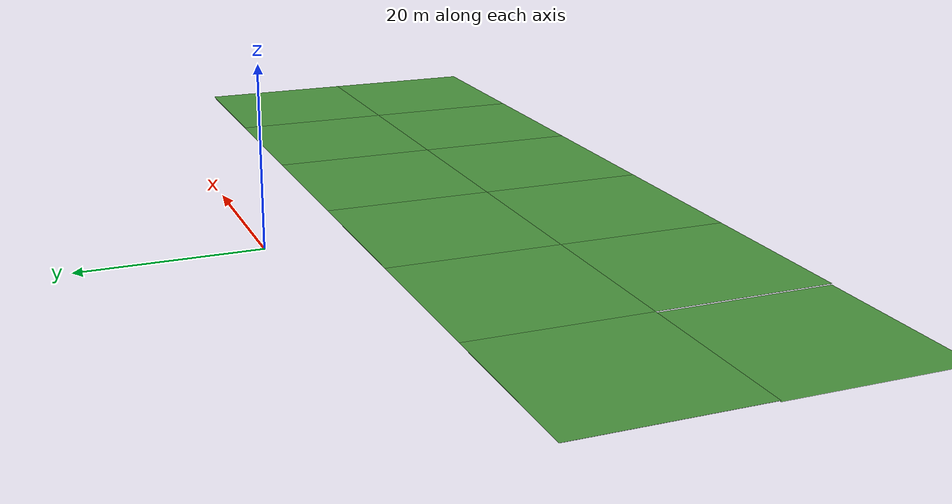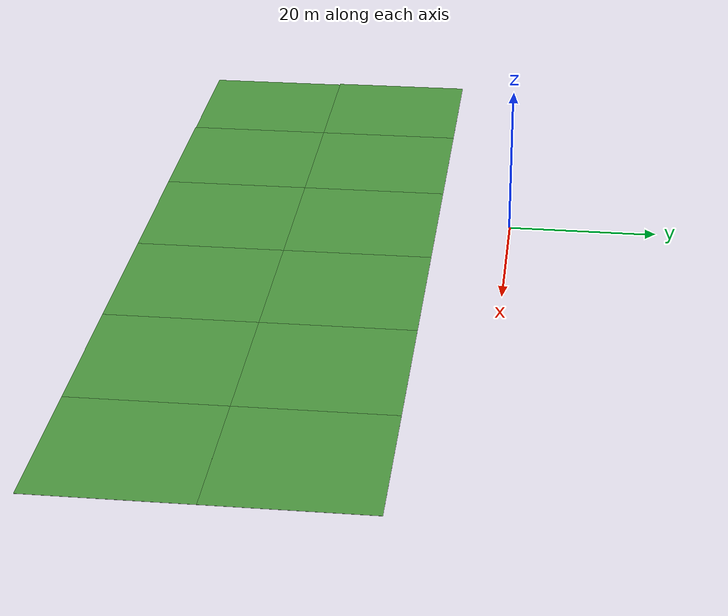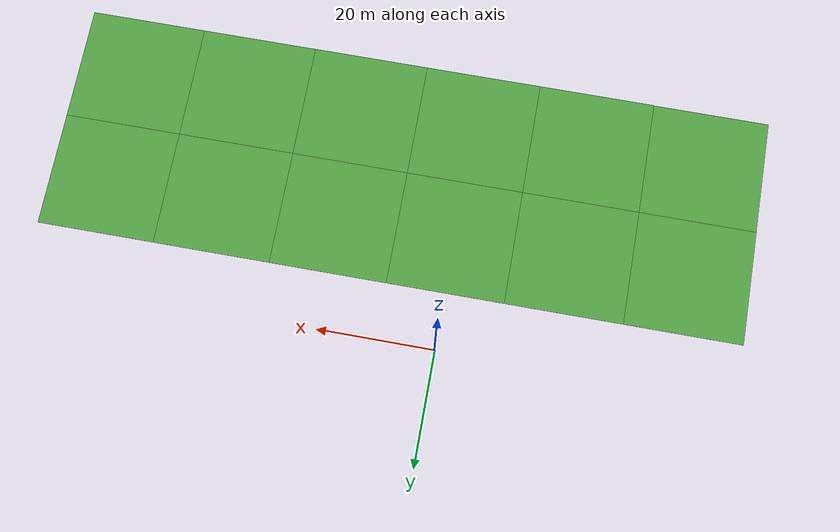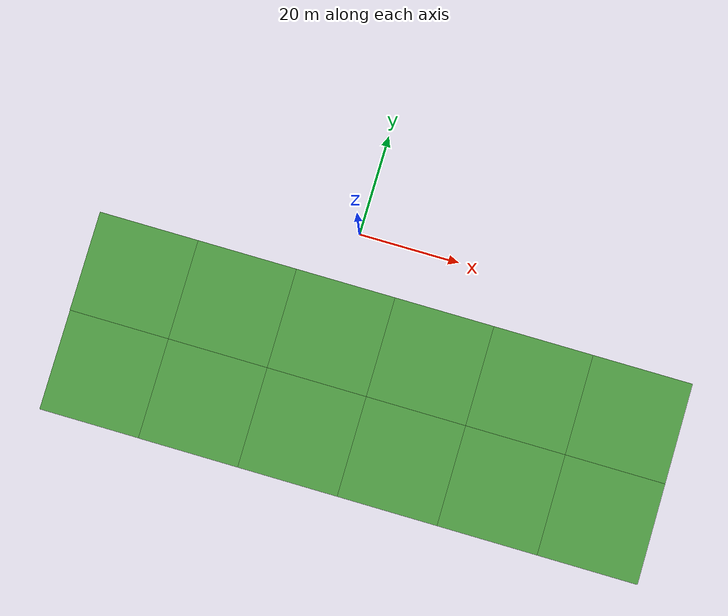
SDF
<?xml version='1.0'?>
<sdf version='1.4'>
  <model name='grass_plane'>
    <static>true</static>
    <link name='link'>
      <collision name='collision'>
        <geometry>
          <plane>
            <normal>0 0 1</normal>
            <size>500 500</size>
          </plane>
        </geometry>
        <surface>
          <friction>
            <ode>
              <mu>0.5</mu>
              <mu2>.5</mu2>
            </ode>
          </friction>
        </surface>
      </collision>

      <visual name='visual_0'>
        <pose>-40 -40 0 0 0 0</pose>

        <cast_shadows>false</cast_shadows>
        <geometry>
          <plane>
            <normal>0 0 1</normal>
            <size>20 20</size>
          </plane>
        </geometry>
        <material>
          <script>
            <uri>model://grass_plane/materials/scripts</uri>
            <uri>model://grass_plane/materials/textures</uri>
            <name>vrc/grass</name>
          </script>
        </material>
      </visual>

      <visual name='visual_1'>
        <pose>-20 -40 0 0 0 0</pose>

        <cast_shadows>false</cast_shadows>
        <geometry>
          <plane>
            <normal>0 0 1</normal>
            <size>20 20</size>
          </plane>
        </geometry>
        <material>
          <script>
            <uri>model://grass_plane/materials/scripts</uri>
            <uri>model://grass_plane/materials/textures</uri>
            <name>vrc/grass</name>
          </script>
        </material>
      </visual>

      <visual name='visual_2'>
        <pose>0 -40 0 0 0 0</pose>

        <cast_shadows>false</cast_shadows>
        <geometry>
          <plane>
            <normal>0 0 1</normal>
            <size>20 20</size>
          </plane>
        </geometry>
        <material>
          <script>
            <uri>model://grass_plane/materials/scripts</uri>
            <uri>model://grass_plane/materials/textures</uri>
            <name>vrc/grass</name>
          </script>
        </material>
      </visual>

      <visual name='visual_3'>
        <pose>20 -40 0 0 0 0</pose>

        <cast_shadows>false</cast_shadows>
        <geometry>
          <plane>
            <normal>0 0 1</normal>
            <size>20 20</size>
          </plane>
        </geometry>
        <material>
          <script>
            <uri>model://grass_plane/materials/scripts</uri>
            <uri>model://grass_plane/materials/textures</uri>
            <name>vrc/grass</name>
          </script>
        </material>
      </visual>

      <visual name='visual_4'>
        <pose>40 -40 0 0 0 0</pose>

        <cast_shadows>false</cast_shadows>
        <geometry>
          <plane>
            <normal>0 0 1</normal>
            <size>20 20</size>
          </plane>
        </geometry>
        <material>
          <script>
            <uri>model://grass_plane/materials/scripts</uri>
            <uri>model://grass_plane/materials/textures</uri>
            <name>vrc/grass</name>
          </script>
        </material>
      </visual>

      <visual name='visual_5'>
        <pose>60 -40 0 0 0 0</pose>

        <cast_shadows>false</cast_shadows>
        <geometry>
          <plane>
            <normal>0 0 1</normal>
            <size>20 20</size>
          </plane>
        </geometry>
        <material>
          <script>
            <uri>model://grass_plane/materials/scripts</uri>
            <uri>model://grass_plane/materials/textures</uri>
            <name>vrc/grass</name>
          </script>
        </material>
      </visual>

      <visual name='visual_6'>
        <pose>-40 -20 0 0 0 0</pose>

        <cast_shadows>false</cast_shadows>
        <geometry>
          <plane>
            <normal>0 0 1</normal>
            <size>20 20</size>
          </plane>
        </geometry>
        <material>
          <script>
            <uri>model://grass_plane/materials/scripts</uri>
            <uri>model://grass_plane/materials/textures</uri>
            <name>vrc/grass</name>
          </script>
        </material>
      </visual>

      <visual name='visual_7'>
        <pose>-20 -20 0 0 0 0</pose>

        <cast_shadows>false</cast_shadows>
        <geometry>
          <plane>
            <normal>0 0 1</normal>
            <size>20 20</size>
          </plane>
        </geometry>
        <material>
          <script>
            <uri>model://grass_plane/materials/scripts</uri>
            <uri>model://grass_plane/materials/textures</uri>
            <name>vrc/grass</name>
          </script>
        </material>
      </visual>

      <visual name='visual_8'>
        <pose>0 -20 0 0 0 0</pose>

        <cast_shadows>false</cast_shadows>
        <geometry>
          <plane>
            <normal>0 0 1</normal>
            <size>20 20</size>
          </plane>
        </geometry>
        <material>
          <script>
            <uri>model://grass_plane/materials/scripts</uri>
            <uri>model://grass_plane/materials/textures</uri>
            <name>vrc/grass</name>
          </script>
        </material>
      </visual>

      <visual name='visual_9'>
        <pose>20 -20 0 0 0 0</pose>

        <cast_shadows>false</cast_shadows>
        <geometry>
          <plane>
            <normal>0 0 1</normal>
            <size>20 20</size>
          </plane>
        </geometry>
        <material>
          <script>
            <uri>model://grass_plane/materials/scripts</uri>
            <uri>model://grass_plane/materials/textures</uri>
            <name>vrc/grass</name>
          </script>
        </material>
      </visual>

      <visual name='visual_10'>
        <pose>40 -20 0 0 0 0</pose>

        <cast_shadows>false</cast_shadows>
        <geometry>
          <plane>
            <normal>0 0 1</normal>
            <size>20 20</size>
          </plane>
        </geometry>
        <material>
          <script>
            <uri>model://grass_plane/materials/scripts</uri>
            <uri>model://grass_plane/materials/textures</uri>
            <name>vrc/grass</name>
          </script>
        </material>
      </visual>

      <visual name='visual_11'>
        <pose>60 -20 0 0 0 0</pose>

        <cast_shadows>false</cast_shadows>
        <geometry>
          <plane>
            <normal>0 0 1</normal>
            <size>20 20</size>
          </plane>
        </geometry>
        <material>
          <script>
            <uri>model://grass_plane/materials/scripts</uri>
            <uri>model://grass_plane/materials/textures</uri>
            <name>vrc/grass</name>
          </script>
        </material>
      </visual>
    </link>
  </model>
</sdf>
